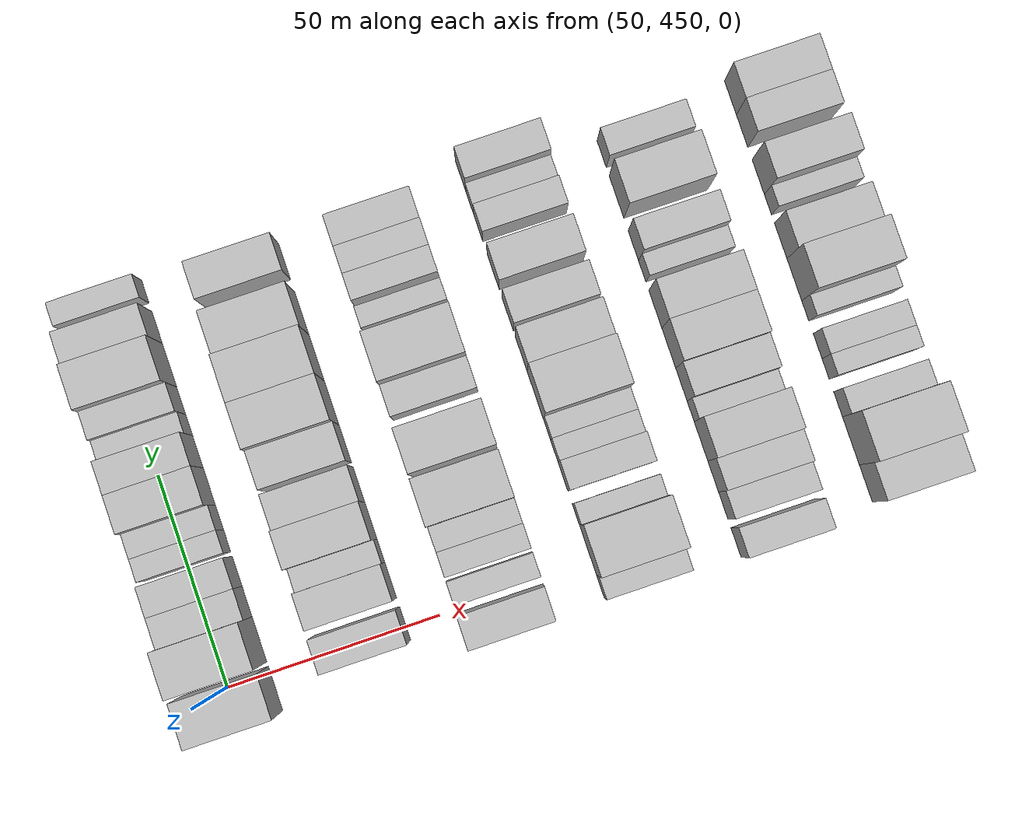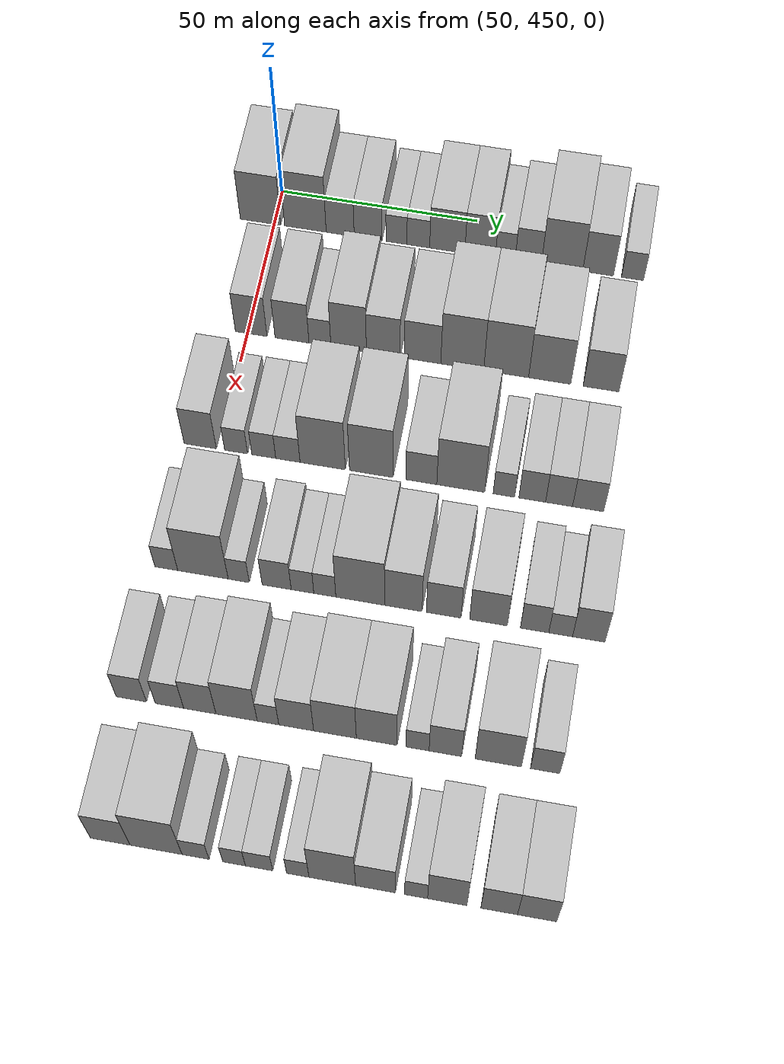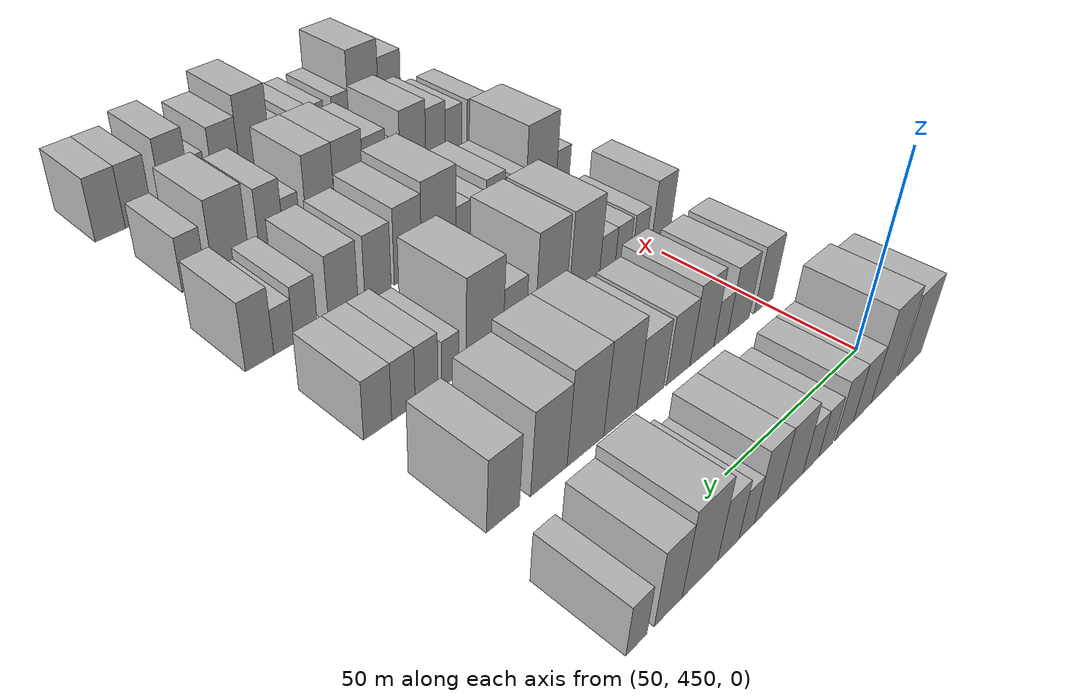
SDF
<sdf version="1.6">
 <world name="default">
  <model name="building_109">
   <static>1</static>
   <pose>50.0000 446.4468 0 0.000000 0.000000 0.000000</pose>
   <link name="link">
    <pose>0 0 10.50 0 0 0</pose>
    <collision name="collision"><geometry><box><size>20.0000 10.3629 21.0000</size></box></geometry></collision>
    <visual name="visual">
     <cast_shadows>0</cast_shadows>
     <geometry><box><size>20.0000 10.3629 21.0000</size></box></geometry>
     <material>
      <script>
       <uri>model://HANNAS_wall/materials/scripts</uri>
       <uri>model://HANNAS_wall/materials/textures</uri>
       <name>vrc/HANNAS_wall</name>
      </script>
     </material>
    </visual>
   </link>
  </model>
  <model name="building_110">
   <static>1</static>
   <pose>50.0000 457.9427 0 0.000000 0.000000 0.000000</pose>
   <link name="link">
    <pose>0 0 12.00 0 0 0</pose>
    <collision name="collision"><geometry><box><size>20.0000 10.6289 24.0000</size></box></geometry></collision>
    <visual name="visual">
     <cast_shadows>0</cast_shadows>
     <geometry><box><size>20.0000 10.6289 24.0000</size></box></geometry>
     <material>
      <script>
       <uri>model://HANNAS_wall/materials/scripts</uri>
       <uri>model://HANNAS_wall/materials/textures</uri>
       <name>vrc/HANNAS_wall</name>
      </script>
     </material>
    </visual>
   </link>
  </model>
  <model name="building_111">
   <static>1</static>
   <pose>50.0000 466.8266 0 0.000000 0.000000 0.000000</pose>
   <link name="link">
    <pose>0 0 7.50 0 0 0</pose>
    <collision name="collision"><geometry><box><size>20.0000 7.1389 15.0000</size></box></geometry></collision>
    <visual name="visual">
     <cast_shadows>0</cast_shadows>
     <geometry><box><size>20.0000 7.1389 15.0000</size></box></geometry>
     <material>
      <script>
       <uri>model://HANNAS_wall/materials/scripts</uri>
       <uri>model://HANNAS_wall/materials/textures</uri>
       <name>vrc/HANNAS_wall</name>
      </script>
     </material>
    </visual>
   </link>
  </model>
  <model name="building_112">
   <static>1</static>
   <pose>50.0000 473.9402 0 0.000000 0.000000 0.000000</pose>
   <link name="link">
    <pose>0 0 7.50 0 0 0</pose>
    <collision name="collision"><geometry><box><size>20.0000 7.0884 15.0000</size></box></geometry></collision>
    <visual name="visual">
     <cast_shadows>0</cast_shadows>
     <geometry><box><size>20.0000 7.0884 15.0000</size></box></geometry>
     <material>
      <script>
       <uri>model://HANNAS_wall/materials/scripts</uri>
       <uri>model://HANNAS_wall/materials/textures</uri>
       <name>vrc/HANNAS_wall</name>
      </script>
     </material>
    </visual>
   </link>
  </model>
  <model name="building_113">
   <static>1</static>
   <pose>50.0000 481.1409 0 0.000000 0.000000 0.000000</pose>
   <link name="link">
    <pose>0 0 6.00 0 0 0</pose>
    <collision name="collision"><geometry><box><size>20.0000 5.3129 12.0000</size></box></geometry></collision>
    <visual name="visual">
     <cast_shadows>0</cast_shadows>
     <geometry><box><size>20.0000 5.3129 12.0000</size></box></geometry>
     <material>
      <script>
       <uri>model://HANNAS_wall/materials/scripts</uri>
       <uri>model://HANNAS_wall/materials/textures</uri>
       <name>vrc/HANNAS_wall</name>
      </script>
     </material>
    </visual>
   </link>
  </model>
  <model name="building_114">
   <static>1</static>
   <pose>50.0000 486.6773 0 0.000000 0.000000 0.000000</pose>
   <link name="link">
    <pose>0 0 6.00 0 0 0</pose>
    <collision name="collision"><geometry><box><size>20.0000 5.7600 12.0000</size></box></geometry></collision>
    <visual name="visual">
     <cast_shadows>0</cast_shadows>
     <geometry><box><size>20.0000 5.7600 12.0000</size></box></geometry>
     <material>
      <script>
       <uri>model://HANNAS_wall/materials/scripts</uri>
       <uri>model://HANNAS_wall/materials/textures</uri>
       <name>vrc/HANNAS_wall</name>
      </script>
     </material>
    </visual>
   </link>
  </model>
  <model name="building_115">
   <static>1</static>
   <pose>50.0000 493.9966 0 0.000000 0.000000 0.000000</pose>
   <link name="link">
    <pose>0 0 9.00 0 0 0</pose>
    <collision name="collision"><geometry><box><size>20.0000 8.8784 18.0000</size></box></geometry></collision>
    <visual name="visual">
     <cast_shadows>0</cast_shadows>
     <geometry><box><size>20.0000 8.8784 18.0000</size></box></geometry>
     <material>
      <script>
       <uri>model://HANNAS_wall/materials/scripts</uri>
       <uri>model://HANNAS_wall/materials/textures</uri>
       <name>vrc/HANNAS_wall</name>
      </script>
     </material>
    </visual>
   </link>
  </model>
  <model name="building_116">
   <static>1</static>
   <pose>50.0000 502.2753 0 0.000000 0.000000 0.000000</pose>
   <link name="link">
    <pose>0 0 9.00 0 0 0</pose>
    <collision name="collision"><geometry><box><size>20.0000 7.6791 18.0000</size></box></geometry></collision>
    <visual name="visual">
     <cast_shadows>0</cast_shadows>
     <geometry><box><size>20.0000 7.6791 18.0000</size></box></geometry>
     <material>
      <script>
       <uri>model://HANNAS_wall/materials/scripts</uri>
       <uri>model://HANNAS_wall/materials/textures</uri>
       <name>vrc/HANNAS_wall</name>
      </script>
     </material>
    </visual>
   </link>
  </model>
  <model name="building_117">
   <static>1</static>
   <pose>50.0000 508.6030 0 0.000000 0.000000 0.000000</pose>
   <link name="link">
    <pose>0 0 6.00 0 0 0</pose>
    <collision name="collision"><geometry><box><size>20.0000 4.9764 12.0000</size></box></geometry></collision>
    <visual name="visual">
     <cast_shadows>0</cast_shadows>
     <geometry><box><size>20.0000 4.9764 12.0000</size></box></geometry>
     <material>
      <script>
       <uri>model://HANNAS_wall/materials/scripts</uri>
       <uri>model://HANNAS_wall/materials/textures</uri>
       <name>vrc/HANNAS_wall</name>
      </script>
     </material>
    </visual>
   </link>
  </model>
  <model name="building_118">
   <static>1</static>
   <pose>50.0000 514.3889 0 0.000000 0.000000 0.000000</pose>
   <link name="link">
    <pose>0 0 7.50 0 0 0</pose>
    <collision name="collision"><geometry><box><size>20.0000 6.5953 15.0000</size></box></geometry></collision>
    <visual name="visual">
     <cast_shadows>0</cast_shadows>
     <geometry><box><size>20.0000 6.5953 15.0000</size></box></geometry>
     <material>
      <script>
       <uri>model://HANNAS_wall/materials/scripts</uri>
       <uri>model://HANNAS_wall/materials/textures</uri>
       <name>vrc/HANNAS_wall</name>
      </script>
     </material>
    </visual>
   </link>
  </model>
  <model name="building_119">
   <static>1</static>
   <pose>50.0000 522.8671 0 0.000000 0.000000 0.000000</pose>
   <link name="link">
    <pose>0 0 10.50 0 0 0</pose>
    <collision name="collision"><geometry><box><size>20.0000 10.3610 21.0000</size></box></geometry></collision>
    <visual name="visual">
     <cast_shadows>0</cast_shadows>
     <geometry><box><size>20.0000 10.3610 21.0000</size></box></geometry>
     <material>
      <script>
       <uri>model://HANNAS_wall/materials/scripts</uri>
       <uri>model://HANNAS_wall/materials/textures</uri>
       <name>vrc/HANNAS_wall</name>
      </script>
     </material>
    </visual>
   </link>
  </model>
  <model name="building_120">
   <static>1</static>
   <pose>50.0000 531.8830 0 0.000000 0.000000 0.000000</pose>
   <link name="link">
    <pose>0 0 9.00 0 0 0</pose>
    <collision name="collision"><geometry><box><size>20.0000 7.6708 18.0000</size></box></geometry></collision>
    <visual name="visual">
     <cast_shadows>0</cast_shadows>
     <geometry><box><size>20.0000 7.6708 18.0000</size></box></geometry>
     <material>
      <script>
       <uri>model://HANNAS_wall/materials/scripts</uri>
       <uri>model://HANNAS_wall/materials/textures</uri>
       <name>vrc/HANNAS_wall</name>
      </script>
     </material>
    </visual>
   </link>
  </model>
  <model name="building_121">
   <static>1</static>
   <pose>50.0000 540.4567 0 0.000000 0.000000 0.000000</pose>
   <link name="link">
    <pose>0 0 6.00 0 0 0</pose>
    <collision name="collision"><geometry><box><size>20.0000 5.4768 12.0000</size></box></geometry></collision>
    <visual name="visual">
     <cast_shadows>0</cast_shadows>
     <geometry><box><size>20.0000 5.4768 12.0000</size></box></geometry>
     <material>
      <script>
       <uri>model://HANNAS_wall/materials/scripts</uri>
       <uri>model://HANNAS_wall/materials/textures</uri>
       <name>vrc/HANNAS_wall</name>
      </script>
     </material>
    </visual>
   </link>
  </model>
  <model name="building_226">
   <static>1</static>
   <pose>82.0000 450.8980 0 0.000000 0.000000 0.000000</pose>
   <link name="link">
    <pose>0 0 9.00 0 0 0</pose>
    <collision name="collision"><geometry><box><size>20.0000 7.8666 18.0000</size></box></geometry></collision>
    <visual name="visual">
     <cast_shadows>0</cast_shadows>
     <geometry><box><size>20.0000 7.8666 18.0000</size></box></geometry>
     <material>
      <script>
       <uri>model://HANNAS_wall/materials/scripts</uri>
       <uri>model://HANNAS_wall/materials/textures</uri>
       <name>vrc/HANNAS_wall</name>
      </script>
     </material>
    </visual>
   </link>
  </model>
  <model name="building_227">
   <static>1</static>
   <pose>82.0000 461.0440 0 0.000000 0.000000 0.000000</pose>
   <link name="link">
    <pose>0 0 9.00 0 0 0</pose>
    <collision name="collision"><geometry><box><size>20.0000 8.4254 18.0000</size></box></geometry></collision>
    <visual name="visual">
     <cast_shadows>0</cast_shadows>
     <geometry><box><size>20.0000 8.4254 18.0000</size></box></geometry>
     <material>
      <script>
       <uri>model://HANNAS_wall/materials/scripts</uri>
       <uri>model://HANNAS_wall/materials/textures</uri>
       <name>vrc/HANNAS_wall</name>
      </script>
     </material>
    </visual>
   </link>
  </model>
  <model name="building_228">
   <static>1</static>
   <pose>82.0000 467.9710 0 0.000000 0.000000 0.000000</pose>
   <link name="link">
    <pose>0 0 6.00 0 0 0</pose>
    <collision name="collision"><geometry><box><size>20.0000 5.4286 12.0000</size></box></geometry></collision>
    <visual name="visual">
     <cast_shadows>0</cast_shadows>
     <geometry><box><size>20.0000 5.4286 12.0000</size></box></geometry>
     <material>
      <script>
       <uri>model://HANNAS_wall/materials/scripts</uri>
       <uri>model://HANNAS_wall/materials/textures</uri>
       <name>vrc/HANNAS_wall</name>
      </script>
     </material>
    </visual>
   </link>
  </model>
  <model name="building_229">
   <static>1</static>
   <pose>82.0000 475.0808 0 0.000000 0.000000 0.000000</pose>
   <link name="link">
    <pose>0 0 10.50 0 0 0</pose>
    <collision name="collision"><geometry><box><size>20.0000 8.7910 21.0000</size></box></geometry></collision>
    <visual name="visual">
     <cast_shadows>0</cast_shadows>
     <geometry><box><size>20.0000 8.7910 21.0000</size></box></geometry>
     <material>
      <script>
       <uri>model://HANNAS_wall/materials/scripts</uri>
       <uri>model://HANNAS_wall/materials/textures</uri>
       <name>vrc/HANNAS_wall</name>
      </script>
     </material>
    </visual>
   </link>
  </model>
  <model name="building_230">
   <static>1</static>
   <pose>82.0000 483.6263 0 0.000000 0.000000 0.000000</pose>
   <link name="link">
    <pose>0 0 9.00 0 0 0</pose>
    <collision name="collision"><geometry><box><size>20.0000 8.3002 18.0000</size></box></geometry></collision>
    <visual name="visual">
     <cast_shadows>0</cast_shadows>
     <geometry><box><size>20.0000 8.3002 18.0000</size></box></geometry>
     <material>
      <script>
       <uri>model://HANNAS_wall/materials/scripts</uri>
       <uri>model://HANNAS_wall/materials/textures</uri>
       <name>vrc/HANNAS_wall</name>
      </script>
     </material>
    </visual>
   </link>
  </model>
  <model name="building_231">
   <static>1</static>
   <pose>82.0000 493.2618 0 0.000000 0.000000 0.000000</pose>
   <link name="link">
    <pose>0 0 9.00 0 0 0</pose>
    <collision name="collision"><geometry><box><size>20.0000 8.9708 18.0000</size></box></geometry></collision>
    <visual name="visual">
     <cast_shadows>0</cast_shadows>
     <geometry><box><size>20.0000 8.9708 18.0000</size></box></geometry>
     <material>
      <script>
       <uri>model://HANNAS_wall/materials/scripts</uri>
       <uri>model://HANNAS_wall/materials/textures</uri>
       <name>vrc/HANNAS_wall</name>
      </script>
     </material>
    </visual>
   </link>
  </model>
  <model name="building_232">
   <static>1</static>
   <pose>82.0000 503.0058 0 0.000000 0.000000 0.000000</pose>
   <link name="link">
    <pose>0 0 12.00 0 0 0</pose>
    <collision name="collision"><geometry><box><size>20.0000 10.5174 24.0000</size></box></geometry></collision>
    <visual name="visual">
     <cast_shadows>0</cast_shadows>
     <geometry><box><size>20.0000 10.5174 24.0000</size></box></geometry>
     <material>
      <script>
       <uri>model://HANNAS_wall/materials/scripts</uri>
       <uri>model://HANNAS_wall/materials/textures</uri>
       <name>vrc/HANNAS_wall</name>
      </script>
     </material>
    </visual>
   </link>
  </model>
  <model name="building_233">
   <static>1</static>
   <pose>82.0000 513.7458 0 0.000000 0.000000 0.000000</pose>
   <link name="link">
    <pose>0 0 12.00 0 0 0</pose>
    <collision name="collision"><geometry><box><size>20.0000 10.9625 24.0000</size></box></geometry></collision>
    <visual name="visual">
     <cast_shadows>0</cast_shadows>
     <geometry><box><size>20.0000 10.9625 24.0000</size></box></geometry>
     <material>
      <script>
       <uri>model://HANNAS_wall/materials/scripts</uri>
       <uri>model://HANNAS_wall/materials/textures</uri>
       <name>vrc/HANNAS_wall</name>
      </script>
     </material>
    </visual>
   </link>
  </model>
  <model name="building_234">
   <static>1</static>
   <pose>82.0000 524.3508 0 0.000000 0.000000 0.000000</pose>
   <link name="link">
    <pose>0 0 10.50 0 0 0</pose>
    <collision name="collision"><geometry><box><size>20.0000 10.2475 21.0000</size></box></geometry></collision>
    <visual name="visual">
     <cast_shadows>0</cast_shadows>
     <geometry><box><size>20.0000 10.2475 21.0000</size></box></geometry>
     <material>
      <script>
       <uri>model://HANNAS_wall/materials/scripts</uri>
       <uri>model://HANNAS_wall/materials/textures</uri>
       <name>vrc/HANNAS_wall</name>
      </script>
     </material>
    </visual>
   </link>
  </model>
  <model name="building_235">
   <static>1</static>
   <pose>82.0000 536.8005 0 0.000000 0.000000 0.000000</pose>
   <link name="link">
    <pose>0 0 9.00 0 0 0</pose>
    <collision name="collision"><geometry><box><size>20.0000 8.6520 18.0000</size></box></geometry></collision>
    <visual name="visual">
     <cast_shadows>0</cast_shadows>
     <geometry><box><size>20.0000 8.6520 18.0000</size></box></geometry>
     <material>
      <script>
       <uri>model://HANNAS_wall/materials/scripts</uri>
       <uri>model://HANNAS_wall/materials/textures</uri>
       <name>vrc/HANNAS_wall</name>
      </script>
     </material>
    </visual>
   </link>
  </model>
  <model name="building_340">
   <static>1</static>
   <pose>114.0000 445.4230 0 0.000000 0.000000 0.000000</pose>
   <link name="link">
    <pose>0 0 9.00 0 0 0</pose>
    <collision name="collision"><geometry><box><size>20.0000 7.8162 18.0000</size></box></geometry></collision>
    <visual name="visual">
     <cast_shadows>0</cast_shadows>
     <geometry><box><size>20.0000 7.8162 18.0000</size></box></geometry>
     <material>
      <script>
       <uri>model://HANNAS_wall/materials/scripts</uri>
       <uri>model://HANNAS_wall/materials/textures</uri>
       <name>vrc/HANNAS_wall</name>
      </script>
     </material>
    </visual>
   </link>
  </model>
  <model name="building_341">
   <static>1</static>
   <pose>114.0000 454.1116 0 0.000000 0.000000 0.000000</pose>
   <link name="link">
    <pose>0 0 6.00 0 0 0</pose>
    <collision name="collision"><geometry><box><size>20.0000 5.5611 12.0000</size></box></geometry></collision>
    <visual name="visual">
     <cast_shadows>0</cast_shadows>
     <geometry><box><size>20.0000 5.5611 12.0000</size></box></geometry>
     <material>
      <script>
       <uri>model://HANNAS_wall/materials/scripts</uri>
       <uri>model://HANNAS_wall/materials/textures</uri>
       <name>vrc/HANNAS_wall</name>
      </script>
     </material>
    </visual>
   </link>
  </model>
  <model name="building_342">
   <static>1</static>
   <pose>114.0000 460.7684 0 0.000000 0.000000 0.000000</pose>
   <link name="link">
    <pose>0 0 6.00 0 0 0</pose>
    <collision name="collision"><geometry><box><size>20.0000 5.7526 12.0000</size></box></geometry></collision>
    <visual name="visual">
     <cast_shadows>0</cast_shadows>
     <geometry><box><size>20.0000 5.7526 12.0000</size></box></geometry>
     <material>
      <script>
       <uri>model://HANNAS_wall/materials/scripts</uri>
       <uri>model://HANNAS_wall/materials/textures</uri>
       <name>vrc/HANNAS_wall</name>
      </script>
     </material>
    </visual>
   </link>
  </model>
  <model name="building_343">
   <static>1</static>
   <pose>114.0000 466.5799 0 0.000000 0.000000 0.000000</pose>
   <link name="link">
    <pose>0 0 6.00 0 0 0</pose>
    <collision name="collision"><geometry><box><size>20.0000 5.8704 12.0000</size></box></geometry></collision>
    <visual name="visual">
     <cast_shadows>0</cast_shadows>
     <geometry><box><size>20.0000 5.8704 12.0000</size></box></geometry>
     <material>
      <script>
       <uri>model://HANNAS_wall/materials/scripts</uri>
       <uri>model://HANNAS_wall/materials/textures</uri>
       <name>vrc/HANNAS_wall</name>
      </script>
     </material>
    </visual>
   </link>
  </model>
  <model name="building_344">
   <static>1</static>
   <pose>114.0000 474.9450 0 0.000000 0.000000 0.000000</pose>
   <link name="link">
    <pose>0 0 12.00 0 0 0</pose>
    <collision name="collision"><geometry><box><size>20.0000 10.8598 24.0000</size></box></geometry></collision>
    <visual name="visual">
     <cast_shadows>0</cast_shadows>
     <geometry><box><size>20.0000 10.8598 24.0000</size></box></geometry>
     <material>
      <script>
       <uri>model://HANNAS_wall/materials/scripts</uri>
       <uri>model://HANNAS_wall/materials/textures</uri>
       <name>vrc/HANNAS_wall</name>
      </script>
     </material>
    </visual>
   </link>
  </model>
  <model name="building_345">
   <static>1</static>
   <pose>114.0000 486.5868 0 0.000000 0.000000 0.000000</pose>
   <link name="link">
    <pose>0 0 12.00 0 0 0</pose>
    <collision name="collision"><geometry><box><size>20.0000 10.4238 24.0000</size></box></geometry></collision>
    <visual name="visual">
     <cast_shadows>0</cast_shadows>
     <geometry><box><size>20.0000 10.4238 24.0000</size></box></geometry>
     <material>
      <script>
       <uri>model://HANNAS_wall/materials/scripts</uri>
       <uri>model://HANNAS_wall/materials/textures</uri>
       <name>vrc/HANNAS_wall</name>
      </script>
     </material>
    </visual>
   </link>
  </model>
  <model name="building_346">
   <static>1</static>
   <pose>114.0000 498.4998 0 0.000000 0.000000 0.000000</pose>
   <link name="link">
    <pose>0 0 7.50 0 0 0</pose>
    <collision name="collision"><geometry><box><size>20.0000 7.4022 15.0000</size></box></geometry></collision>
    <visual name="visual">
     <cast_shadows>0</cast_shadows>
     <geometry><box><size>20.0000 7.4022 15.0000</size></box></geometry>
     <material>
      <script>
       <uri>model://HANNAS_wall/materials/scripts</uri>
       <uri>model://HANNAS_wall/materials/textures</uri>
       <name>vrc/HANNAS_wall</name>
      </script>
     </material>
    </visual>
   </link>
  </model>
  <model name="building_347">
   <static>1</static>
   <pose>114.0000 507.8925 0 0.000000 0.000000 0.000000</pose>
   <link name="link">
    <pose>0 0 12.00 0 0 0</pose>
    <collision name="collision"><geometry><box><size>20.0000 11.3832 24.0000</size></box></geometry></collision>
    <visual name="visual">
     <cast_shadows>0</cast_shadows>
     <geometry><box><size>20.0000 11.3832 24.0000</size></box></geometry>
     <material>
      <script>
       <uri>model://HANNAS_wall/materials/scripts</uri>
       <uri>model://HANNAS_wall/materials/textures</uri>
       <name>vrc/HANNAS_wall</name>
      </script>
     </material>
    </visual>
   </link>
  </model>
  <model name="building_348">
   <static>1</static>
   <pose>114.0000 518.1226 0 0.000000 0.000000 0.000000</pose>
   <link name="link">
    <pose>0 0 6.00 0 0 0</pose>
    <collision name="collision"><geometry><box><size>20.0000 5.0769 12.0000</size></box></geometry></collision>
    <visual name="visual">
     <cast_shadows>0</cast_shadows>
     <geometry><box><size>20.0000 5.0769 12.0000</size></box></geometry>
     <material>
      <script>
       <uri>model://HANNAS_wall/materials/scripts</uri>
       <uri>model://HANNAS_wall/materials/textures</uri>
       <name>vrc/HANNAS_wall</name>
      </script>
     </material>
    </visual>
   </link>
  </model>
  <model name="building_349">
   <static>1</static>
   <pose>114.0000 524.8085 0 0.000000 0.000000 0.000000</pose>
   <link name="link">
    <pose>0 0 7.50 0 0 0</pose>
    <collision name="collision"><geometry><box><size>20.0000 6.2950 15.0000</size></box></geometry></collision>
    <visual name="visual">
     <cast_shadows>0</cast_shadows>
     <geometry><box><size>20.0000 6.2950 15.0000</size></box></geometry>
     <material>
      <script>
       <uri>model://HANNAS_wall/materials/scripts</uri>
       <uri>model://HANNAS_wall/materials/textures</uri>
       <name>vrc/HANNAS_wall</name>
      </script>
     </material>
    </visual>
   </link>
  </model>
  <model name="building_350">
   <static>1</static>
   <pose>114.0000 531.1259 0 0.000000 0.000000 0.000000</pose>
   <link name="link">
    <pose>0 0 7.50 0 0 0</pose>
    <collision name="collision"><geometry><box><size>20.0000 6.3398 15.0000</size></box></geometry></collision>
    <visual name="visual">
     <cast_shadows>0</cast_shadows>
     <geometry><box><size>20.0000 6.3398 15.0000</size></box></geometry>
     <material>
      <script>
       <uri>model://HANNAS_wall/materials/scripts</uri>
       <uri>model://HANNAS_wall/materials/textures</uri>
       <name>vrc/HANNAS_wall</name>
      </script>
     </material>
    </visual>
   </link>
  </model>
  <model name="building_351">
   <static>1</static>
   <pose>114.0000 537.9493 0 0.000000 0.000000 0.000000</pose>
   <link name="link">
    <pose>0 0 7.50 0 0 0</pose>
    <collision name="collision"><geometry><box><size>20.0000 7.3071 15.0000</size></box></geometry></collision>
    <visual name="visual">
     <cast_shadows>0</cast_shadows>
     <geometry><box><size>20.0000 7.3071 15.0000</size></box></geometry>
     <material>
      <script>
       <uri>model://HANNAS_wall/materials/scripts</uri>
       <uri>model://HANNAS_wall/materials/textures</uri>
       <name>vrc/HANNAS_wall</name>
      </script>
     </material>
    </visual>
   </link>
  </model>
  <model name="building_462">
   <static>1</static>
   <pose>146.0000 444.6626 0 0.000000 0.000000 0.000000</pose>
   <link name="link">
    <pose>0 0 6.00 0 0 0</pose>
    <collision name="collision"><geometry><box><size>20.0000 5.3867 12.0000</size></box></geometry></collision>
    <visual name="visual">
     <cast_shadows>0</cast_shadows>
     <geometry><box><size>20.0000 5.3867 12.0000</size></box></geometry>
     <material>
      <script>
       <uri>model://HANNAS_wall/materials/scripts</uri>
       <uri>model://HANNAS_wall/materials/textures</uri>
       <name>vrc/HANNAS_wall</name>
      </script>
     </material>
    </visual>
   </link>
  </model>
  <model name="building_463">
   <static>1</static>
   <pose>146.0000 453.2777 0 0.000000 0.000000 0.000000</pose>
   <link name="link">
    <pose>0 0 12.00 0 0 0</pose>
    <collision name="collision"><geometry><box><size>20.0000 11.8436 24.0000</size></box></geometry></collision>
    <visual name="visual">
     <cast_shadows>0</cast_shadows>
     <geometry><box><size>20.0000 11.8436 24.0000</size></box></geometry>
     <material>
      <script>
       <uri>model://HANNAS_wall/materials/scripts</uri>
       <uri>model://HANNAS_wall/materials/textures</uri>
       <name>vrc/HANNAS_wall</name>
      </script>
     </material>
    </visual>
   </link>
  </model>
  <model name="building_464">
   <static>1</static>
   <pose>146.0000 461.6652 0 0.000000 0.000000 0.000000</pose>
   <link name="link">
    <pose>0 0 6.00 0 0 0</pose>
    <collision name="collision"><geometry><box><size>20.0000 4.9313 12.0000</size></box></geometry></collision>
    <visual name="visual">
     <cast_shadows>0</cast_shadows>
     <geometry><box><size>20.0000 4.9313 12.0000</size></box></geometry>
     <material>
      <script>
       <uri>model://HANNAS_wall/materials/scripts</uri>
       <uri>model://HANNAS_wall/materials/textures</uri>
       <name>vrc/HANNAS_wall</name>
      </script>
     </material>
    </visual>
   </link>
  </model>
  <model name="building_465">
   <static>1</static>
   <pose>146.0000 470.5243 0 0.000000 0.000000 0.000000</pose>
   <link name="link">
    <pose>0 0 7.50 0 0 0</pose>
    <collision name="collision"><geometry><box><size>20.0000 6.7870 15.0000</size></box></geometry></collision>
    <visual name="visual">
     <cast_shadows>0</cast_shadows>
     <geometry><box><size>20.0000 6.7870 15.0000</size></box></geometry>
     <material>
      <script>
       <uri>model://HANNAS_wall/materials/scripts</uri>
       <uri>model://HANNAS_wall/materials/textures</uri>
       <name>vrc/HANNAS_wall</name>
      </script>
     </material>
    </visual>
   </link>
  </model>
  <model name="building_466">
   <static>1</static>
   <pose>146.0000 476.5491 0 0.000000 0.000000 0.000000</pose>
   <link name="link">
    <pose>0 0 6.00 0 0 0</pose>
    <collision name="collision"><geometry><box><size>20.0000 5.2627 12.0000</size></box></geometry></collision>
    <visual name="visual">
     <cast_shadows>0</cast_shadows>
     <geometry><box><size>20.0000 5.2627 12.0000</size></box></geometry>
     <material>
      <script>
       <uri>model://HANNAS_wall/materials/scripts</uri>
       <uri>model://HANNAS_wall/materials/textures</uri>
       <name>vrc/HANNAS_wall</name>
      </script>
     </material>
    </visual>
   </link>
  </model>
  <model name="building_467">
   <static>1</static>
   <pose>146.0000 481.7399 0 0.000000 0.000000 0.000000</pose>
   <link name="link">
    <pose>0 0 6.00 0 0 0</pose>
    <collision name="collision"><geometry><box><size>20.0000 5.1189 12.0000</size></box></geometry></collision>
    <visual name="visual">
     <cast_shadows>0</cast_shadows>
     <geometry><box><size>20.0000 5.1189 12.0000</size></box></geometry>
     <material>
      <script>
       <uri>model://HANNAS_wall/materials/scripts</uri>
       <uri>model://HANNAS_wall/materials/textures</uri>
       <name>vrc/HANNAS_wall</name>
      </script>
     </material>
    </visual>
   </link>
  </model>
  <model name="building_468">
   <static>1</static>
   <pose>146.0000 489.9629 0 0.000000 0.000000 0.000000</pose>
   <link name="link">
    <pose>0 0 12.00 0 0 0</pose>
    <collision name="collision"><geometry><box><size>20.0000 11.3272 24.0000</size></box></geometry></collision>
    <visual name="visual">
     <cast_shadows>0</cast_shadows>
     <geometry><box><size>20.0000 11.3272 24.0000</size></box></geometry>
     <material>
      <script>
       <uri>model://HANNAS_wall/materials/scripts</uri>
       <uri>model://HANNAS_wall/materials/textures</uri>
       <name>vrc/HANNAS_wall</name>
      </script>
     </material>
    </visual>
   </link>
  </model>
  <model name="building_469">
   <static>1</static>
   <pose>146.0000 499.9306 0 0.000000 0.000000 0.000000</pose>
   <link name="link">
    <pose>0 0 10.50 0 0 0</pose>
    <collision name="collision"><geometry><box><size>20.0000 8.6081 21.0000</size></box></geometry></collision>
    <visual name="visual">
     <cast_shadows>0</cast_shadows>
     <geometry><box><size>20.0000 8.6081 21.0000</size></box></geometry>
     <material>
      <script>
       <uri>model://HANNAS_wall/materials/scripts</uri>
       <uri>model://HANNAS_wall/materials/textures</uri>
       <name>vrc/HANNAS_wall</name>
      </script>
     </material>
    </visual>
   </link>
  </model>
  <model name="building_470">
   <static>1</static>
   <pose>146.0000 509.2064 0 0.000000 0.000000 0.000000</pose>
   <link name="link">
    <pose>0 0 9.00 0 0 0</pose>
    <collision name="collision"><geometry><box><size>20.0000 7.9436 18.0000</size></box></geometry></collision>
    <visual name="visual">
     <cast_shadows>0</cast_shadows>
     <geometry><box><size>20.0000 7.9436 18.0000</size></box></geometry>
     <material>
      <script>
       <uri>model://HANNAS_wall/materials/scripts</uri>
       <uri>model://HANNAS_wall/materials/textures</uri>
       <name>vrc/HANNAS_wall</name>
      </script>
     </material>
    </visual>
   </link>
  </model>
  <model name="building_471">
   <static>1</static>
   <pose>146.0000 519.4947 0 0.000000 0.000000 0.000000</pose>
   <link name="link">
    <pose>0 0 9.00 0 0 0</pose>
    <collision name="collision"><geometry><box><size>20.0000 8.6330 18.0000</size></box></geometry></collision>
    <visual name="visual">
     <cast_shadows>0</cast_shadows>
     <geometry><box><size>20.0000 8.6330 18.0000</size></box></geometry>
     <material>
      <script>
       <uri>model://HANNAS_wall/materials/scripts</uri>
       <uri>model://HANNAS_wall/materials/textures</uri>
       <name>vrc/HANNAS_wall</name>
      </script>
     </material>
    </visual>
   </link>
  </model>
  <model name="building_472">
   <static>1</static>
   <pose>146.0000 530.0475 0 0.000000 0.000000 0.000000</pose>
   <link name="link">
    <pose>0 0 7.50 0 0 0</pose>
    <collision name="collision"><geometry><box><size>20.0000 6.4727 15.0000</size></box></geometry></collision>
    <visual name="visual">
     <cast_shadows>0</cast_shadows>
     <geometry><box><size>20.0000 6.4727 15.0000</size></box></geometry>
     <material>
      <script>
       <uri>model://HANNAS_wall/materials/scripts</uri>
       <uri>model://HANNAS_wall/materials/textures</uri>
       <name>vrc/HANNAS_wall</name>
      </script>
     </material>
    </visual>
   </link>
  </model>
  <model name="building_473">
   <static>1</static>
   <pose>146.0000 535.9885 0 0.000000 0.000000 0.000000</pose>
   <link name="link">
    <pose>0 0 6.00 0 0 0</pose>
    <collision name="collision"><geometry><box><size>20.0000 5.4092 12.0000</size></box></geometry></collision>
    <visual name="visual">
     <cast_shadows>0</cast_shadows>
     <geometry><box><size>20.0000 5.4092 12.0000</size></box></geometry>
     <material>
      <script>
       <uri>model://HANNAS_wall/materials/scripts</uri>
       <uri>model://HANNAS_wall/materials/textures</uri>
       <name>vrc/HANNAS_wall</name>
      </script>
     </material>
    </visual>
   </link>
  </model>
  <model name="building_474">
   <static>1</static>
   <pose>146.0000 542.3773 0 0.000000 0.000000 0.000000</pose>
   <link name="link">
    <pose>0 0 9.00 0 0 0</pose>
    <collision name="collision"><geometry><box><size>20.0000 7.3684 18.0000</size></box></geometry></collision>
    <visual name="visual">
     <cast_shadows>0</cast_shadows>
     <geometry><box><size>20.0000 7.3684 18.0000</size></box></geometry>
     <material>
      <script>
       <uri>model://HANNAS_wall/materials/scripts</uri>
       <uri>model://HANNAS_wall/materials/textures</uri>
       <name>vrc/HANNAS_wall</name>
      </script>
     </material>
    </visual>
   </link>
  </model>
  <model name="building_579">
   <static>1</static>
   <pose>178.0000 444.2007 0 0.000000 0.000000 0.000000</pose>
   <link name="link">
    <pose>0 0 7.50 0 0 0</pose>
    <collision name="collision"><geometry><box><size>20.0000 6.9176 15.0000</size></box></geometry></collision>
    <visual name="visual">
     <cast_shadows>0</cast_shadows>
     <geometry><box><size>20.0000 6.9176 15.0000</size></box></geometry>
     <material>
      <script>
       <uri>model://HANNAS_wall/materials/scripts</uri>
       <uri>model://HANNAS_wall/materials/textures</uri>
       <name>vrc/HANNAS_wall</name>
      </script>
     </material>
    </visual>
   </link>
  </model>
  <model name="building_580">
   <static>1</static>
   <pose>178.0000 452.8923 0 0.000000 0.000000 0.000000</pose>
   <link name="link">
    <pose>0 0 7.50 0 0 0</pose>
    <collision name="collision"><geometry><box><size>20.0000 6.4657 15.0000</size></box></geometry></collision>
    <visual name="visual">
     <cast_shadows>0</cast_shadows>
     <geometry><box><size>20.0000 6.4657 15.0000</size></box></geometry>
     <material>
      <script>
       <uri>model://HANNAS_wall/materials/scripts</uri>
       <uri>model://HANNAS_wall/materials/textures</uri>
       <name>vrc/HANNAS_wall</name>
      </script>
     </material>
    </visual>
   </link>
  </model>
  <model name="building_581">
   <static>1</static>
   <pose>178.0000 459.7927 0 0.000000 0.000000 0.000000</pose>
   <link name="link">
    <pose>0 0 9.00 0 0 0</pose>
    <collision name="collision"><geometry><box><size>20.0000 7.3351 18.0000</size></box></geometry></collision>
    <visual name="visual">
     <cast_shadows>0</cast_shadows>
     <geometry><box><size>20.0000 7.3351 18.0000</size></box></geometry>
     <material>
      <script>
       <uri>model://HANNAS_wall/materials/scripts</uri>
       <uri>model://HANNAS_wall/materials/textures</uri>
       <name>vrc/HANNAS_wall</name>
      </script>
     </material>
    </visual>
   </link>
  </model>
  <model name="building_582">
   <static>1</static>
   <pose>178.0000 468.1271 0 0.000000 0.000000 0.000000</pose>
   <link name="link">
    <pose>0 0 10.50 0 0 0</pose>
    <collision name="collision"><geometry><box><size>20.0000 9.3336 21.0000</size></box></geometry></collision>
    <visual name="visual">
     <cast_shadows>0</cast_shadows>
     <geometry><box><size>20.0000 9.3336 21.0000</size></box></geometry>
     <material>
      <script>
       <uri>model://HANNAS_wall/materials/scripts</uri>
       <uri>model://HANNAS_wall/materials/textures</uri>
       <name>vrc/HANNAS_wall</name>
      </script>
     </material>
    </visual>
   </link>
  </model>
  <model name="building_583">
   <static>1</static>
   <pose>178.0000 475.2232 0 0.000000 0.000000 0.000000</pose>
   <link name="link">
    <pose>0 0 6.00 0 0 0</pose>
    <collision name="collision"><geometry><box><size>20.0000 4.8586 12.0000</size></box></geometry></collision>
    <visual name="visual">
     <cast_shadows>0</cast_shadows>
     <geometry><box><size>20.0000 4.8586 12.0000</size></box></geometry>
     <material>
      <script>
       <uri>model://HANNAS_wall/materials/scripts</uri>
       <uri>model://HANNAS_wall/materials/textures</uri>
       <name>vrc/HANNAS_wall</name>
      </script>
     </material>
    </visual>
   </link>
  </model>
  <model name="building_584">
   <static>1</static>
   <pose>178.0000 481.5780 0 0.000000 0.000000 0.000000</pose>
   <link name="link">
    <pose>0 0 9.00 0 0 0</pose>
    <collision name="collision"><geometry><box><size>20.0000 7.8510 18.0000</size></box></geometry></collision>
    <visual name="visual">
     <cast_shadows>0</cast_shadows>
     <geometry><box><size>20.0000 7.8510 18.0000</size></box></geometry>
     <material>
      <script>
       <uri>model://HANNAS_wall/materials/scripts</uri>
       <uri>model://HANNAS_wall/materials/textures</uri>
       <name>vrc/HANNAS_wall</name>
      </script>
     </material>
    </visual>
   </link>
  </model>
  <model name="building_585">
   <static>1</static>
   <pose>178.0000 490.2990 0 0.000000 0.000000 0.000000</pose>
   <link name="link">
    <pose>0 0 10.50 0 0 0</pose>
    <collision name="collision"><geometry><box><size>20.0000 9.5910 21.0000</size></box></geometry></collision>
    <visual name="visual">
     <cast_shadows>0</cast_shadows>
     <geometry><box><size>20.0000 9.5910 21.0000</size></box></geometry>
     <material>
      <script>
       <uri>model://HANNAS_wall/materials/scripts</uri>
       <uri>model://HANNAS_wall/materials/textures</uri>
       <name>vrc/HANNAS_wall</name>
      </script>
     </material>
    </visual>
   </link>
  </model>
  <model name="building_586">
   <static>1</static>
   <pose>178.0000 499.6498 0 0.000000 0.000000 0.000000</pose>
   <link name="link">
    <pose>0 0 10.50 0 0 0</pose>
    <collision name="collision"><geometry><box><size>20.0000 9.1107 21.0000</size></box></geometry></collision>
    <visual name="visual">
     <cast_shadows>0</cast_shadows>
     <geometry><box><size>20.0000 9.1107 21.0000</size></box></geometry>
     <material>
      <script>
       <uri>model://HANNAS_wall/materials/scripts</uri>
       <uri>model://HANNAS_wall/materials/textures</uri>
       <name>vrc/HANNAS_wall</name>
      </script>
     </material>
    </visual>
   </link>
  </model>
  <model name="building_587">
   <static>1</static>
   <pose>178.0000 508.7628 0 0.000000 0.000000 0.000000</pose>
   <link name="link">
    <pose>0 0 6.00 0 0 0</pose>
    <collision name="collision"><geometry><box><size>20.0000 5.1152 12.0000</size></box></geometry></collision>
    <visual name="visual">
     <cast_shadows>0</cast_shadows>
     <geometry><box><size>20.0000 5.1152 12.0000</size></box></geometry>
     <material>
      <script>
       <uri>model://HANNAS_wall/materials/scripts</uri>
       <uri>model://HANNAS_wall/materials/textures</uri>
       <name>vrc/HANNAS_wall</name>
      </script>
     </material>
    </visual>
   </link>
  </model>
  <model name="building_588">
   <static>1</static>
   <pose>178.0000 514.9468 0 0.000000 0.000000 0.000000</pose>
   <link name="link">
    <pose>0 0 9.00 0 0 0</pose>
    <collision name="collision"><geometry><box><size>20.0000 7.2528 18.0000</size></box></geometry></collision>
    <visual name="visual">
     <cast_shadows>0</cast_shadows>
     <geometry><box><size>20.0000 7.2528 18.0000</size></box></geometry>
     <material>
      <script>
       <uri>model://HANNAS_wall/materials/scripts</uri>
       <uri>model://HANNAS_wall/materials/textures</uri>
       <name>vrc/HANNAS_wall</name>
      </script>
     </material>
    </visual>
   </link>
  </model>
  <model name="building_589">
   <static>1</static>
   <pose>178.0000 526.7001 0 0.000000 0.000000 0.000000</pose>
   <link name="link">
    <pose>0 0 10.50 0 0 0</pose>
    <collision name="collision"><geometry><box><size>20.0000 10.2538 21.0000</size></box></geometry></collision>
    <visual name="visual">
     <cast_shadows>0</cast_shadows>
     <geometry><box><size>20.0000 10.2538 21.0000</size></box></geometry>
     <material>
      <script>
       <uri>model://HANNAS_wall/materials/scripts</uri>
       <uri>model://HANNAS_wall/materials/textures</uri>
       <name>vrc/HANNAS_wall</name>
      </script>
     </material>
    </visual>
   </link>
  </model>
  <model name="building_590">
   <static>1</static>
   <pose>178.0000 537.0675 0 0.000000 0.000000 0.000000</pose>
   <link name="link">
    <pose>0 0 7.50 0 0 0</pose>
    <collision name="collision"><geometry><box><size>20.0000 6.4809 15.0000</size></box></geometry></collision>
    <visual name="visual">
     <cast_shadows>0</cast_shadows>
     <geometry><box><size>20.0000 6.4809 15.0000</size></box></geometry>
     <material>
      <script>
       <uri>model://HANNAS_wall/materials/scripts</uri>
       <uri>model://HANNAS_wall/materials/textures</uri>
       <name>vrc/HANNAS_wall</name>
      </script>
     </material>
    </visual>
   </link>
  </model>
  <model name="building_700">
   <static>1</static>
   <pose>210.0000 447.3069 0 0.000000 0.000000 0.000000</pose>
   <link name="link">
    <pose>0 0 9.00 0 0 0</pose>
    <collision name="collision"><geometry><box><size>20.0000 8.7619 18.0000</size></box></geometry></collision>
    <visual name="visual">
     <cast_shadows>0</cast_shadows>
     <geometry><box><size>20.0000 8.7619 18.0000</size></box></geometry>
     <material>
      <script>
       <uri>model://HANNAS_wall/materials/scripts</uri>
       <uri>model://HANNAS_wall/materials/textures</uri>
       <name>vrc/HANNAS_wall</name>
      </script>
     </material>
    </visual>
   </link>
  </model>
  <model name="building_701">
   <static>1</static>
   <pose>210.0000 457.4082 0 0.000000 0.000000 0.000000</pose>
   <link name="link">
    <pose>0 0 12.00 0 0 0</pose>
    <collision name="collision"><geometry><box><size>20.0000 11.4407 24.0000</size></box></geometry></collision>
    <visual name="visual">
     <cast_shadows>0</cast_shadows>
     <geometry><box><size>20.0000 11.4407 24.0000</size></box></geometry>
     <material>
      <script>
       <uri>model://HANNAS_wall/materials/scripts</uri>
       <uri>model://HANNAS_wall/materials/textures</uri>
       <name>vrc/HANNAS_wall</name>
      </script>
     </material>
    </visual>
   </link>
  </model>
  <model name="building_702">
   <static>1</static>
   <pose>210.0000 466.1004 0 0.000000 0.000000 0.000000</pose>
   <link name="link">
    <pose>0 0 6.00 0 0 0</pose>
    <collision name="collision"><geometry><box><size>20.0000 5.9437 12.0000</size></box></geometry></collision>
    <visual name="visual">
     <cast_shadows>0</cast_shadows>
     <geometry><box><size>20.0000 5.9437 12.0000</size></box></geometry>
     <material>
      <script>
       <uri>model://HANNAS_wall/materials/scripts</uri>
       <uri>model://HANNAS_wall/materials/textures</uri>
       <name>vrc/HANNAS_wall</name>
      </script>
     </material>
    </visual>
   </link>
  </model>
  <model name="building_703">
   <static>1</static>
   <pose>210.0000 474.5456 0 0.000000 0.000000 0.000000</pose>
   <link name="link">
    <pose>0 0 6.00 0 0 0</pose>
    <collision name="collision"><geometry><box><size>20.0000 4.9467 12.0000</size></box></geometry></collision>
    <visual name="visual">
     <cast_shadows>0</cast_shadows>
     <geometry><box><size>20.0000 4.9467 12.0000</size></box></geometry>
     <material>
      <script>
       <uri>model://HANNAS_wall/materials/scripts</uri>
       <uri>model://HANNAS_wall/materials/textures</uri>
       <name>vrc/HANNAS_wall</name>
      </script>
     </material>
    </visual>
   </link>
  </model>
  <model name="building_704">
   <static>1</static>
   <pose>210.0000 480.0045 0 0.000000 0.000000 0.000000</pose>
   <link name="link">
    <pose>0 0 6.00 0 0 0</pose>
    <collision name="collision"><geometry><box><size>20.0000 5.9710 12.0000</size></box></geometry></collision>
    <visual name="visual">
     <cast_shadows>0</cast_shadows>
     <geometry><box><size>20.0000 5.9710 12.0000</size></box></geometry>
     <material>
      <script>
       <uri>model://HANNAS_wall/materials/scripts</uri>
       <uri>model://HANNAS_wall/materials/textures</uri>
       <name>vrc/HANNAS_wall</name>
      </script>
     </material>
    </visual>
   </link>
  </model>
  <model name="building_705">
   <static>1</static>
   <pose>210.0000 488.4212 0 0.000000 0.000000 0.000000</pose>
   <link name="link">
    <pose>0 0 6.00 0 0 0</pose>
    <collision name="collision"><geometry><box><size>20.0000 4.8625 12.0000</size></box></geometry></collision>
    <visual name="visual">
     <cast_shadows>0</cast_shadows>
     <geometry><box><size>20.0000 4.8625 12.0000</size></box></geometry>
     <material>
      <script>
       <uri>model://HANNAS_wall/materials/scripts</uri>
       <uri>model://HANNAS_wall/materials/textures</uri>
       <name>vrc/HANNAS_wall</name>
      </script>
     </material>
    </visual>
   </link>
  </model>
  <model name="building_706">
   <static>1</static>
   <pose>210.0000 495.9084 0 0.000000 0.000000 0.000000</pose>
   <link name="link">
    <pose>0 0 12.00 0 0 0</pose>
    <collision name="collision"><geometry><box><size>20.0000 10.1119 24.0000</size></box></geometry></collision>
    <visual name="visual">
     <cast_shadows>0</cast_shadows>
     <geometry><box><size>20.0000 10.1119 24.0000</size></box></geometry>
     <material>
      <script>
       <uri>model://HANNAS_wall/materials/scripts</uri>
       <uri>model://HANNAS_wall/materials/textures</uri>
       <name>vrc/HANNAS_wall</name>
      </script>
     </material>
    </visual>
   </link>
  </model>
  <model name="building_707">
   <static>1</static>
   <pose>210.0000 505.2590 0 0.000000 0.000000 0.000000</pose>
   <link name="link">
    <pose>0 0 9.00 0 0 0</pose>
    <collision name="collision"><geometry><box><size>20.0000 8.5892 18.0000</size></box></geometry></collision>
    <visual name="visual">
     <cast_shadows>0</cast_shadows>
     <geometry><box><size>20.0000 8.5892 18.0000</size></box></geometry>
     <material>
      <script>
       <uri>model://HANNAS_wall/materials/scripts</uri>
       <uri>model://HANNAS_wall/materials/textures</uri>
       <name>vrc/HANNAS_wall</name>
      </script>
     </material>
    </visual>
   </link>
  </model>
  <model name="building_708">
   <static>1</static>
   <pose>210.0000 514.0194 0 0.000000 0.000000 0.000000</pose>
   <link name="link">
    <pose>0 0 6.00 0 0 0</pose>
    <collision name="collision"><geometry><box><size>20.0000 4.9316 12.0000</size></box></geometry></collision>
    <visual name="visual">
     <cast_shadows>0</cast_shadows>
     <geometry><box><size>20.0000 4.9316 12.0000</size></box></geometry>
     <material>
      <script>
       <uri>model://HANNAS_wall/materials/scripts</uri>
       <uri>model://HANNAS_wall/materials/textures</uri>
       <name>vrc/HANNAS_wall</name>
      </script>
     </material>
    </visual>
   </link>
  </model>
  <model name="building_709">
   <static>1</static>
   <pose>210.0000 520.7089 0 0.000000 0.000000 0.000000</pose>
   <link name="link">
    <pose>0 0 10.50 0 0 0</pose>
    <collision name="collision"><geometry><box><size>20.0000 8.4475 21.0000</size></box></geometry></collision>
    <visual name="visual">
     <cast_shadows>0</cast_shadows>
     <geometry><box><size>20.0000 8.4475 21.0000</size></box></geometry>
     <material>
      <script>
       <uri>model://HANNAS_wall/materials/scripts</uri>
       <uri>model://HANNAS_wall/materials/textures</uri>
       <name>vrc/HANNAS_wall</name>
      </script>
     </material>
    </visual>
   </link>
  </model>
  <model name="building_710">
   <static>1</static>
   <pose>210.0000 531.8538 0 0.000000 0.000000 0.000000</pose>
   <link name="link">
    <pose>0 0 9.00 0 0 0</pose>
    <collision name="collision"><geometry><box><size>20.0000 7.8422 18.0000</size></box></geometry></collision>
    <visual name="visual">
     <cast_shadows>0</cast_shadows>
     <geometry><box><size>20.0000 7.8422 18.0000</size></box></geometry>
     <material>
      <script>
       <uri>model://HANNAS_wall/materials/scripts</uri>
       <uri>model://HANNAS_wall/materials/textures</uri>
       <name>vrc/HANNAS_wall</name>
      </script>
     </material>
    </visual>
   </link>
  </model>
  <model name="building_711">
   <static>1</static>
   <pose>210.0000 539.9413 0 0.000000 0.000000 0.000000</pose>
   <link name="link">
    <pose>0 0 9.00 0 0 0</pose>
    <collision name="collision"><geometry><box><size>20.0000 8.3328 18.0000</size></box></geometry></collision>
    <visual name="visual">
     <cast_shadows>0</cast_shadows>
     <geometry><box><size>20.0000 8.3328 18.0000</size></box></geometry>
     <material>
      <script>
       <uri>model://HANNAS_wall/materials/scripts</uri>
       <uri>model://HANNAS_wall/materials/textures</uri>
       <name>vrc/HANNAS_wall</name>
      </script>
     </material>
    </visual>
   </link>
  </model>
 </world>
</sdf>
